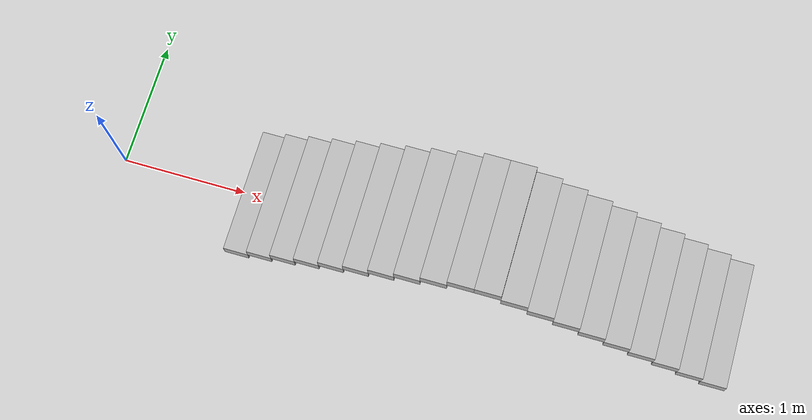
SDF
<sdf version="1.7">
 <world name="default">
  <light name="sun" type="directional">
   <pose>0 0 10 0 -0 0</pose>
   <diffuse>0.8 0.8 0.8 1</diffuse>
   <specular>0.2 0.2 0.2 1</specular>
   <attenuation>
    <range>1000</range>
    <constant>0.9</constant>
    <linear>0.01</linear>
    <quadratic>0.001</quadratic>
   </attenuation>
   <direction>-0.5 0.1 -0.9</direction>
   <spot><inner_angle>0</inner_angle><outer_angle>0</outer_angle><falloff>0</falloff></spot>
  </light>
  <model name="ground_plane">
   <static>1</static>
   <link name="link">
    <collision name="collision">
     <geometry><plane><normal>0 0 1</normal><size>100 100</size></plane></geometry>
     <surface><friction><ode><mu>100</mu><mu2>50</mu2></ode></friction></surface>
    </collision>
    <visual name="visual">
     <cast_shadows>0</cast_shadows>
     <geometry><plane><normal>0 0 1</normal><size>100 100</size></plane></geometry>
     <material>
      <script><uri>file://media/materials/scripts/gazebo.material</uri><name>Gazebo/Grey</name></script>
     </material>
    </visual>
   </link>
  </model>
  <gravity>0 0 -9.8</gravity>
  <magnetic_field>6e-06 2.3e-05 -4.2e-05</magnetic_field>
  <atmosphere type="adiabatic"/>
  <physics type="ode">
   <max_step_size>0.001</max_step_size>
   <real_time_factor>1</real_time_factor>
   <real_time_update_rate>1000</real_time_update_rate>
  </physics>
  <scene><ambient>0.4 0.4 0.4 1</ambient><background>0.7 0.7 0.7 1</background><shadows>1</shadows></scene>
  <spherical_coordinates>
   <surface_model>EARTH_WGS84</surface_model>
   <latitude_deg>0</latitude_deg>
   <longitude_deg>0</longitude_deg>
   <elevation>0</elevation>
   <heading_deg>0</heading_deg>
  </spherical_coordinates>
  <model name="staircase_var1">
   <link name="base_link">
    <inertial>
     <pose>2 0 0.5 0 -0 0</pose>
     <mass>20</mass>
     <inertia>
      <ixx>21.65</ixx>
      <ixy>0</ixy>
      <ixz>-1.42109e-14</ixz>
      <iyy>48.25</iyy>
      <iyz>0</iyz>
      <izz>46.6</izz>
     </inertia>
    </inertial>
    <collision name="base_link_fixed_joint_lump__staircase_seg1_0_collision">
     <pose>1.9 0 0.95 0 -0 0</pose>
     <geometry><box><size>0.2 1 0.1</size></box></geometry>
    </collision>
    <collision name="base_link_fixed_joint_lump__staircase_seg1_1_collision_1">
     <pose>1.7 0 0.85 0 -0 0</pose>
     <geometry><box><size>0.2 1 0.1</size></box></geometry>
    </collision>
    <collision name="base_link_fixed_joint_lump__staircase_seg1_2_collision_2">
     <pose>1.5 0 0.75 0 -0 0</pose>
     <geometry><box><size>0.2 1 0.1</size></box></geometry>
    </collision>
    <collision name="base_link_fixed_joint_lump__staircase_seg1_3_collision_3">
     <pose>1.3 0 0.65 0 -0 0</pose>
     <geometry><box><size>0.2 1 0.1</size></box></geometry>
    </collision>
    <collision name="base_link_fixed_joint_lump__staircase_seg1_4_collision_4">
     <pose>1.1 0 0.55 0 -0 0</pose>
     <geometry><box><size>0.2 1 0.1</size></box></geometry>
    </collision>
    <collision name="base_link_fixed_joint_lump__staircase_seg1_5_collision_5">
     <pose>0.9 0 0.45 0 -0 0</pose>
     <geometry><box><size>0.2 1 0.1</size></box></geometry>
    </collision>
    <collision name="base_link_fixed_joint_lump__staircase_seg1_6_collision_6">
     <pose>0.7 0 0.35 0 -0 0</pose>
     <geometry><box><size>0.2 1 0.1</size></box></geometry>
    </collision>
    <collision name="base_link_fixed_joint_lump__staircase_seg1_7_collision_7">
     <pose>0.5 0 0.25 0 -0 0</pose>
     <geometry><box><size>0.2 1 0.1</size></box></geometry>
    </collision>
    <collision name="base_link_fixed_joint_lump__staircase_seg1_8_collision_8">
     <pose>0.3 0 0.15 0 -0 0</pose>
     <geometry><box><size>0.2 1 0.1</size></box></geometry>
    </collision>
    <collision name="base_link_fixed_joint_lump__staircase_seg1_9_collision_9">
     <pose>0.1 0 0.05 0 -0 0</pose>
     <geometry><box><size>0.2 1 0.1</size></box></geometry>
    </collision>
    <collision name="base_link_fixed_joint_lump__staircase_seg2_0_collision_10">
     <pose>3.9 0 0.05 0 -0 0</pose>
     <geometry><box><size>0.2 1 0.1</size></box></geometry>
    </collision>
    <collision name="base_link_fixed_joint_lump__staircase_seg2_1_collision_11">
     <pose>3.7 0 0.15 0 -0 0</pose>
     <geometry><box><size>0.2 1 0.1</size></box></geometry>
    </collision>
    <collision name="base_link_fixed_joint_lump__staircase_seg2_2_collision_12">
     <pose>3.5 0 0.25 0 -0 0</pose>
     <geometry><box><size>0.2 1 0.1</size></box></geometry>
    </collision>
    <collision name="base_link_fixed_joint_lump__staircase_seg2_3_collision_13">
     <pose>3.3 0 0.35 0 -0 0</pose>
     <geometry><box><size>0.2 1 0.1</size></box></geometry>
    </collision>
    <collision name="base_link_fixed_joint_lump__staircase_seg2_4_collision_14">
     <pose>3.1 0 0.45 0 -0 0</pose>
     <geometry><box><size>0.2 1 0.1</size></box></geometry>
    </collision>
    <collision name="base_link_fixed_joint_lump__staircase_seg2_5_collision_15">
     <pose>2.9 0 0.55 0 -0 0</pose>
     <geometry><box><size>0.2 1 0.1</size></box></geometry>
    </collision>
    <collision name="base_link_fixed_joint_lump__staircase_seg2_6_collision_16">
     <pose>2.7 0 0.65 0 -0 0</pose>
     <geometry><box><size>0.2 1 0.1</size></box></geometry>
    </collision>
    <collision name="base_link_fixed_joint_lump__staircase_seg2_7_collision_17">
     <pose>2.5 0 0.75 0 -0 0</pose>
     <geometry><box><size>0.2 1 0.1</size></box></geometry>
    </collision>
    <collision name="base_link_fixed_joint_lump__staircase_seg2_8_collision_18">
     <pose>2.3 0 0.85 0 -0 0</pose>
     <geometry><box><size>0.2 1 0.1</size></box></geometry>
    </collision>
    <collision name="base_link_fixed_joint_lump__staircase_seg2_9_collision_19">
     <pose>2.1 0 0.95 0 -0 0</pose>
     <geometry><box><size>0.2 1 0.1</size></box></geometry>
    </collision>
    <visual name="base_link_fixed_joint_lump__staircase_seg1_0_visual">
     <pose>1.9 0 0.95 0 -0 0</pose>
     <geometry><box><size>0.2 1 0.1</size></box></geometry>
    </visual>
    <visual name="base_link_fixed_joint_lump__staircase_seg1_1_visual_1">
     <pose>1.7 0 0.85 0 -0 0</pose>
     <geometry><box><size>0.2 1 0.1</size></box></geometry>
    </visual>
    <visual name="base_link_fixed_joint_lump__staircase_seg1_2_visual_2">
     <pose>1.5 0 0.75 0 -0 0</pose>
     <geometry><box><size>0.2 1 0.1</size></box></geometry>
    </visual>
    <visual name="base_link_fixed_joint_lump__staircase_seg1_3_visual_3">
     <pose>1.3 0 0.65 0 -0 0</pose>
     <geometry><box><size>0.2 1 0.1</size></box></geometry>
    </visual>
    <visual name="base_link_fixed_joint_lump__staircase_seg1_4_visual_4">
     <pose>1.1 0 0.55 0 -0 0</pose>
     <geometry><box><size>0.2 1 0.1</size></box></geometry>
    </visual>
    <visual name="base_link_fixed_joint_lump__staircase_seg1_5_visual_5">
     <pose>0.9 0 0.45 0 -0 0</pose>
     <geometry><box><size>0.2 1 0.1</size></box></geometry>
    </visual>
    <visual name="base_link_fixed_joint_lump__staircase_seg1_6_visual_6">
     <pose>0.7 0 0.35 0 -0 0</pose>
     <geometry><box><size>0.2 1 0.1</size></box></geometry>
    </visual>
    <visual name="base_link_fixed_joint_lump__staircase_seg1_7_visual_7">
     <pose>0.5 0 0.25 0 -0 0</pose>
     <geometry><box><size>0.2 1 0.1</size></box></geometry>
    </visual>
    <visual name="base_link_fixed_joint_lump__staircase_seg1_8_visual_8">
     <pose>0.3 0 0.15 0 -0 0</pose>
     <geometry><box><size>0.2 1 0.1</size></box></geometry>
    </visual>
    <visual name="base_link_fixed_joint_lump__staircase_seg1_9_visual_9">
     <pose>0.1 0 0.05 0 -0 0</pose>
     <geometry><box><size>0.2 1 0.1</size></box></geometry>
    </visual>
    <visual name="base_link_fixed_joint_lump__staircase_seg2_0_visual_10">
     <pose>3.9 0 0.05 0 -0 0</pose>
     <geometry><box><size>0.2 1 0.1</size></box></geometry>
    </visual>
    <visual name="base_link_fixed_joint_lump__staircase_seg2_1_visual_11">
     <pose>3.7 0 0.15 0 -0 0</pose>
     <geometry><box><size>0.2 1 0.1</size></box></geometry>
    </visual>
    <visual name="base_link_fixed_joint_lump__staircase_seg2_2_visual_12">
     <pose>3.5 0 0.25 0 -0 0</pose>
     <geometry><box><size>0.2 1 0.1</size></box></geometry>
    </visual>
    <visual name="base_link_fixed_joint_lump__staircase_seg2_3_visual_13">
     <pose>3.3 0 0.35 0 -0 0</pose>
     <geometry><box><size>0.2 1 0.1</size></box></geometry>
    </visual>
    <visual name="base_link_fixed_joint_lump__staircase_seg2_4_visual_14">
     <pose>3.1 0 0.45 0 -0 0</pose>
     <geometry><box><size>0.2 1 0.1</size></box></geometry>
    </visual>
    <visual name="base_link_fixed_joint_lump__staircase_seg2_5_visual_15">
     <pose>2.9 0 0.55 0 -0 0</pose>
     <geometry><box><size>0.2 1 0.1</size></box></geometry>
    </visual>
    <visual name="base_link_fixed_joint_lump__staircase_seg2_6_visual_16">
     <pose>2.7 0 0.65 0 -0 0</pose>
     <geometry><box><size>0.2 1 0.1</size></box></geometry>
    </visual>
    <visual name="base_link_fixed_joint_lump__staircase_seg2_7_visual_17">
     <pose>2.5 0 0.75 0 -0 0</pose>
     <geometry><box><size>0.2 1 0.1</size></box></geometry>
    </visual>
    <visual name="base_link_fixed_joint_lump__staircase_seg2_8_visual_18">
     <pose>2.3 0 0.85 0 -0 0</pose>
     <geometry><box><size>0.2 1 0.1</size></box></geometry>
    </visual>
    <visual name="base_link_fixed_joint_lump__staircase_seg2_9_visual_19">
     <pose>2.1 0 0.95 0 -0 0</pose>
     <geometry><box><size>0.2 1 0.1</size></box></geometry>
    </visual>
   </link>
   <pose>1 -1.5e-05 0 0 -0 4e-06</pose>
  </model>
 </world>
</sdf>
